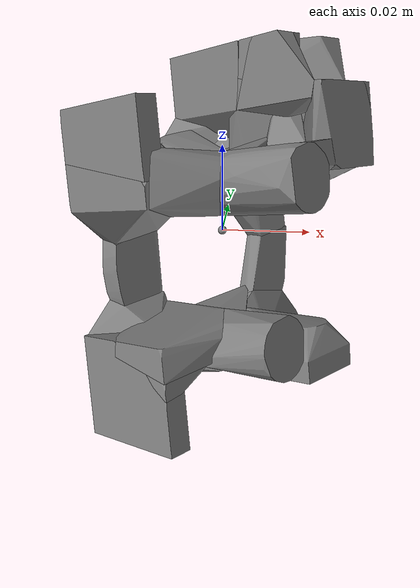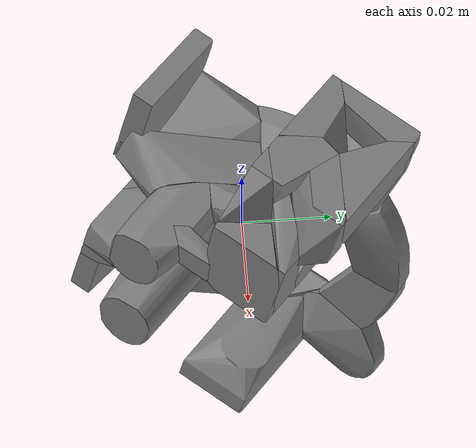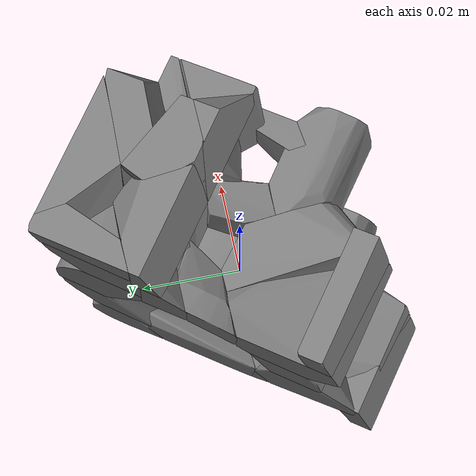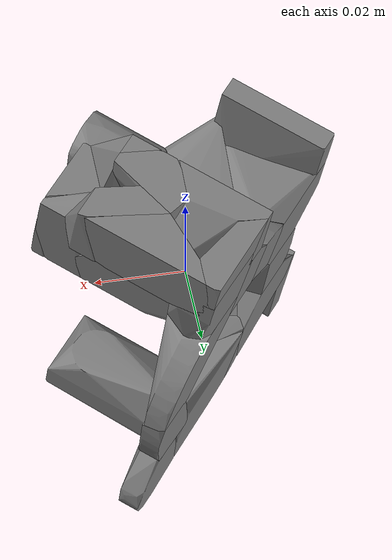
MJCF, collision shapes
<mujoco model="1">
  <default>
    <default class="visual">
      <geom group="2" type="mesh" contype="0" conaffinity="0" material="color_1" />
    </default>
    <default class="collision">
      <geom group="3" type="mesh" solimp="0.95 0.99 0.0001" solref="0.01 1" />
    </default>
  </default>
  <asset>
    <mesh file="1.obj" />
    <mesh file="1_collision_0.obj" />
    <mesh file="1_collision_1.obj" />
    <mesh file="1_collision_2.obj" />
    <mesh file="1_collision_3.obj" />
    <mesh file="1_collision_4.obj" />
    <mesh file="1_collision_5.obj" />
    <mesh file="1_collision_6.obj" />
    <mesh file="1_collision_7.obj" />
    <mesh file="1_collision_8.obj" />
    <mesh file="1_collision_9.obj" />
    <mesh file="1_collision_10.obj" />
    <mesh file="1_collision_11.obj" />
    <mesh file="1_collision_12.obj" />
    <mesh file="1_collision_13.obj" />
    <mesh file="1_collision_14.obj" />
    <mesh file="1_collision_15.obj" />
    <mesh file="1_collision_16.obj" />
    <mesh file="1_collision_17.obj" />
    <mesh file="1_collision_18.obj" />
    <mesh file="1_collision_19.obj" />
    <mesh file="1_collision_20.obj" />
    <mesh file="1_collision_21.obj" />
    <mesh file="1_collision_22.obj" />
    <mesh file="1_collision_23.obj" />
    <mesh file="1_collision_24.obj" />
    <mesh file="1_collision_25.obj" />
    <mesh file="1_collision_26.obj" />
    <mesh file="1_collision_27.obj" />
    <mesh file="1_collision_28.obj" />
    <mesh file="1_collision_29.obj" />
    <mesh file="1_collision_30.obj" />
    <mesh file="1_collision_31.obj" />
    <material name='color_1' specular='0.5' shininess='0.25'
      rgba='1.0 0.341176471 0.349019608 1.0' />
  </asset>
  <worldbody>
    <body name="1">
      <site name="centroid" euler="90 0 225" size="0.001 0.001 0.001" />
      <geom name="main_geom" mesh="1" class="visual" />
      <geom mesh="1_collision_0" class="collision" />
      <geom mesh="1_collision_1" class="collision" />
      <geom mesh="1_collision_2" class="collision" />
      <geom mesh="1_collision_3" class="collision" />
      <geom mesh="1_collision_4" class="collision" />
      <geom mesh="1_collision_5" class="collision" />
      <geom mesh="1_collision_6" class="collision" />
      <geom mesh="1_collision_7" class="collision" />
      <geom mesh="1_collision_8" class="collision" />
      <geom mesh="1_collision_9" class="collision" />
      <geom mesh="1_collision_10" class="collision" />
      <geom mesh="1_collision_11" class="collision" />
      <geom mesh="1_collision_12" class="collision" />
      <geom mesh="1_collision_13" class="collision" />
      <geom mesh="1_collision_14" class="collision" />
      <geom mesh="1_collision_15" class="collision" />
      <geom mesh="1_collision_16" class="collision" />
      <geom mesh="1_collision_17" class="collision" />
      <geom mesh="1_collision_18" class="collision" />
      <geom mesh="1_collision_19" class="collision" />
      <geom mesh="1_collision_20" class="collision" />
      <geom mesh="1_collision_21" class="collision" />
      <geom mesh="1_collision_22" class="collision" />
      <geom mesh="1_collision_23" class="collision" />
      <geom mesh="1_collision_24" class="collision" />
      <geom mesh="1_collision_25" class="collision" />
      <geom mesh="1_collision_26" class="collision" />
      <geom mesh="1_collision_27" class="collision" />
      <geom mesh="1_collision_28" class="collision" />
      <geom mesh="1_collision_29" class="collision" />
      <geom mesh="1_collision_30" class="collision" />
      <geom mesh="1_collision_31" class="collision" />
    </body>
  </worldbody>
</mujoco>
